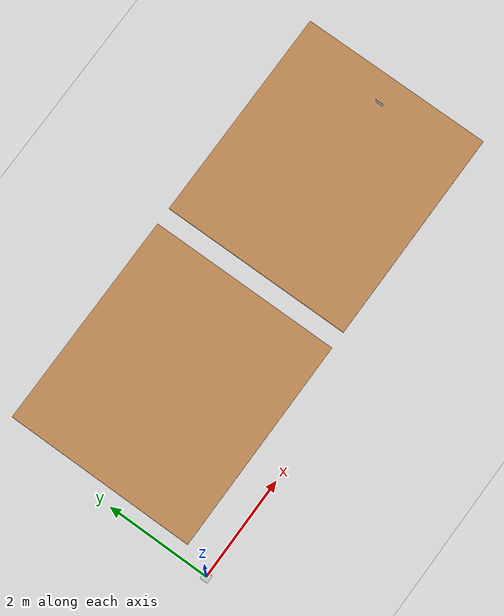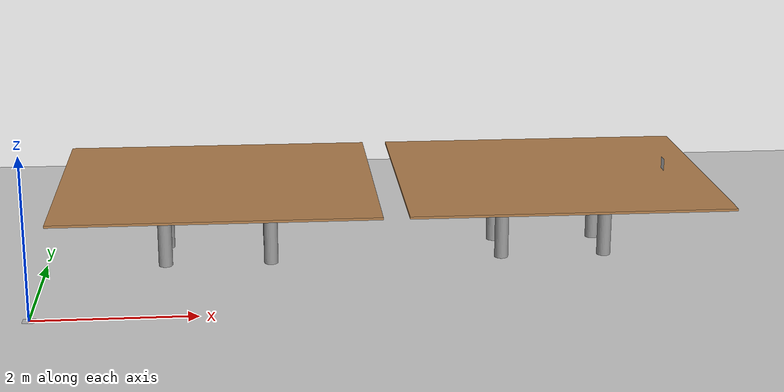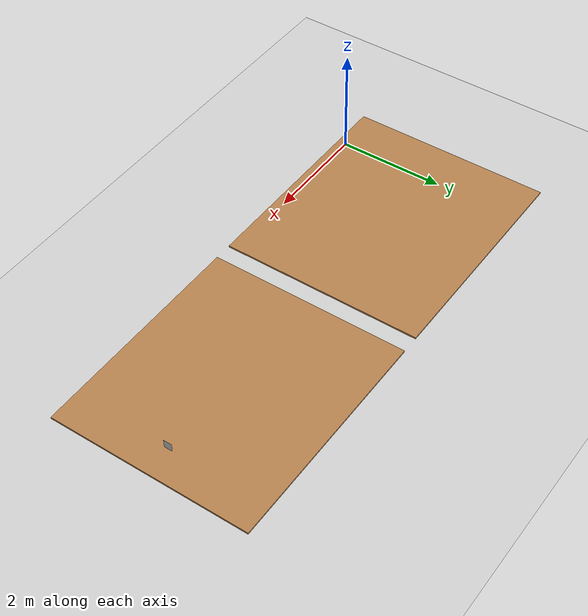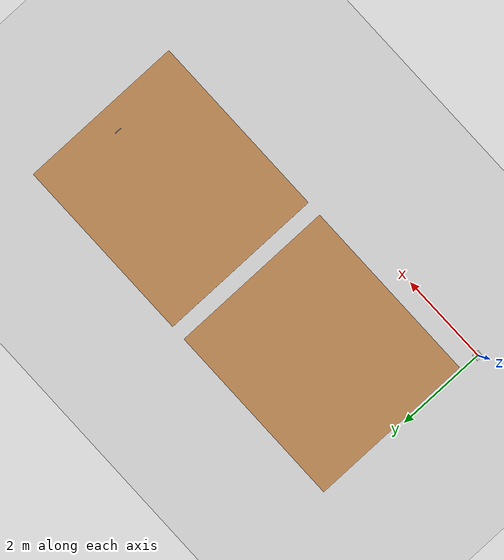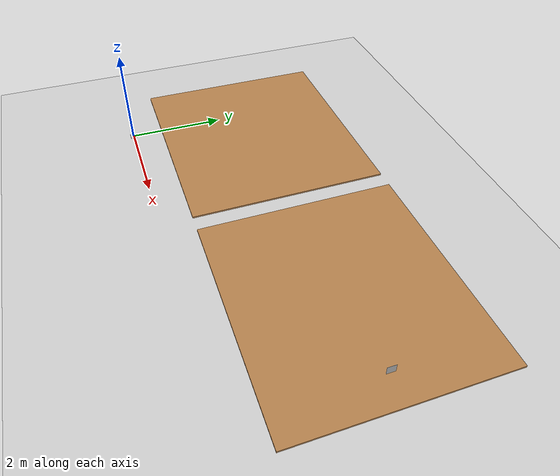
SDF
<sdf version="1.7">
 <world name="default">
  <plugin name="ros_link_attacher_plugin" filename="libgazebo_ros_link_attacher.so"/>
  <light name="sun" type="directional">
   <pose>0 0 10 0 -0 0</pose>
   <diffuse>0.8 0.8 0.8 1</diffuse>
   <specular>0.2 0.2 0.2 1</specular>
   <attenuation>
    <range>1000</range>
    <constant>0.9</constant>
    <linear>0.01</linear>
    <quadratic>0.001</quadratic>
   </attenuation>
   <direction>-0.5 0.1 -0.9</direction>
   <spot><inner_angle>0</inner_angle><outer_angle>0</outer_angle><falloff>0</falloff></spot>
  </light>
  <model name="ground_plane">
   <static>1</static>
   <link name="link">
    <collision name="collision">
     <geometry><plane><normal>0 0 1</normal><size>100 100</size></plane></geometry>
     <surface>
      <contact><collide_bitmask>65535</collide_bitmask></contact>
      <friction><ode><mu>100</mu><mu2>50</mu2></ode></friction>
     </surface>
    </collision>
    <visual name="visual">
     <cast_shadows>0</cast_shadows>
     <geometry><plane><normal>0 0 1</normal><size>100 100</size></plane></geometry>
     <material>
      <script><uri>file://media/materials/scripts/gazebo.material</uri><name>Gazebo/Grey</name></script>
     </material>
    </visual>
   </link>
  </model>
  <gravity>0 0 -9.8</gravity>
  <magnetic_field>6e-06 2.3e-05 -4.2e-05</magnetic_field>
  <atmosphere type="adiabatic"/>
  <physics type="ode">
   <max_step_size>0.001</max_step_size>
   <real_time_factor>1</real_time_factor>
   <real_time_update_rate>1000000</real_time_update_rate>
  </physics>
  <scene><ambient>0.4 0.4 0.4 1</ambient><background>0.7 0.7 0.7 1</background><shadows>1</shadows></scene>
  <spherical_coordinates>
   <surface_model>EARTH_WGS84</surface_model>
   <latitude_deg>0</latitude_deg>
   <longitude_deg>0</longitude_deg>
   <elevation>0</elevation>
   <heading_deg>0</heading_deg>
  </spherical_coordinates>
  <model name="Apriltag36_11_00028">
   <link name="main">
    <visual name="main_Visual">
     <geometry><box><size>0.15243 0.15243 0.0001</size></box></geometry>
     <material>
      <script>
       <uri>model://Apriltag36_11_00028/materials/scripts</uri>
       <uri>model://Apriltag36_11_00028/materials/textures</uri>
       <name>Apriltag36_11_00028</name>
      </script>
     </material>
    </visual>
   </link>
   <static>1</static>
  </model>
  <model name="Apriltag36_11_00029">
   <link name="main">
    <visual name="main_Visual">
     <geometry><box><size>0.15243 0.15243 0.0001</size></box></geometry>
     <material>
      <script>
       <uri>model://Apriltag36_11_00029/materials/scripts</uri>
       <uri>model://Apriltag36_11_00029/materials/textures</uri>
       <name>Apriltag36_11_00029</name>
      </script>
     </material>
    </visual>
   </link>
   <static>1</static>
  </model>
  <model name="Apriltag36_11_00030">
   <link name="main">
    <visual name="main_Visual">
     <geometry><box><size>0.15243 0.15243 0.0001</size></box></geometry>
     <material>
      <script>
       <uri>model://Apriltag36_11_00030/materials/scripts</uri>
       <uri>model://Apriltag36_11_00030/materials/textures</uri>
       <name>Apriltag36_11_00030</name>
      </script>
     </material>
    </visual>
   </link>
   <static>1</static>
  </model>
  <model name="Apriltag36_11_00031">
   <link name="main">
    <visual name="main_Visual">
     <geometry><box><size>0.15243 0.15243 0.0001</size></box></geometry>
     <material>
      <script>
       <uri>model://Apriltag36_11_00031/materials/scripts</uri>
       <uri>model://Apriltag36_11_00031/materials/textures</uri>
       <name>Apriltag36_11_00031</name>
      </script>
     </material>
    </visual>
   </link>
   <static>1</static>
   <pose>8.092145 2.286 1.108131 0 -1.56787 0</pose>
  </model>
  <model name="table">
   <static>1</static>
   <link name="link_table">
    <collision name="surface">
     <pose>0 0 1 0 -0 0</pose>
     <geometry><box><size>4.05 3.6 0.03</size></box></geometry>
     <surface><friction><ode><mu>0.6</mu><mu2>0.6</mu2></ode></friction></surface>
    </collision>
    <visual name="visual1">
     <pose>0 0 1 0 -0 0</pose>
     <geometry><box><size>4.05 3.6 0.03</size></box></geometry>
     <material>
      <script><uri>file://media/materials/scripts/gazebo.material</uri><name>Gazebo/Wood</name></script>
     </material>
    </visual>
    <collision name="front_left_leg">
     <pose>0.68 0.38 0.5 0 -0 0</pose>
     <geometry><cylinder><radius>0.09</radius><length>1</length></cylinder></geometry>
    </collision>
    <visual name="front_left_leg">
     <pose>0.68 0.38 0.5 0 -0 0</pose>
     <geometry><cylinder><radius>0.09</radius><length>1</length></cylinder></geometry>
     <material>
      <script><uri>file://media/materials/scripts/gazebo.material</uri><name>Gazebo/Grey</name></script>
     </material>
    </visual>
    <collision name="front_right_leg">
     <pose>0.68 -0.38 0.5 0 -0 0</pose>
     <geometry><cylinder><radius>0.09</radius><length>1</length></cylinder></geometry>
    </collision>
    <visual name="front_right_leg">
     <pose>0.68 -0.38 0.5 0 -0 0</pose>
     <geometry><cylinder><radius>0.09</radius><length>1</length></cylinder></geometry>
     <material>
      <script><uri>file://media/materials/scripts/gazebo.material</uri><name>Gazebo/Grey</name></script>
     </material>
    </visual>
    <collision name="back_right_leg">
     <pose>-0.68 -0.38 0.5 0 -0 0</pose>
     <geometry><cylinder><radius>0.09</radius><length>1</length></cylinder></geometry>
    </collision>
    <visual name="back_right_leg">
     <pose>-0.68 -0.38 0.5 0 -0 0</pose>
     <geometry><cylinder><radius>0.09</radius><length>1</length></cylinder></geometry>
     <material>
      <script><uri>file://media/materials/scripts/gazebo.material</uri><name>Gazebo/Grey</name></script>
     </material>
    </visual>
    <collision name="back_left_leg">
     <pose>-0.68 0.38 0.5 0 -0 0</pose>
     <geometry><cylinder><radius>0.09</radius><length>1</length></cylinder></geometry>
    </collision>
    <visual name="back_left_leg">
     <pose>-0.68 0.38 0.5 0 -0 0</pose>
     <geometry><cylinder><radius>0.09</radius><length>1</length></cylinder></geometry>
     <material>
      <script><uri>file://media/materials/scripts/gazebo.material</uri><name>Gazebo/Grey</name></script>
     </material>
    </visual>
   </link>
   <pose>2.2 2.286000 0 0 -0 0</pose>
  </model>
  <model name="table_0">
   <static>1</static>
   <link name="link_table_0">
    <collision name="surface">
     <pose>0 0 1 0 -0 0</pose>
     <geometry><box><size>4.05 3.6 0.03</size></box></geometry>
     <surface><friction><ode><mu>0.6</mu><mu2>0.6</mu2></ode></friction></surface>
    </collision>
    <visual name="visual1">
     <pose>0 0 1 0 -0 0</pose>
     <geometry><box><size>4.05 3.6 0.03</size></box></geometry>
     <material>
      <script><uri>file://media/materials/scripts/gazebo.material</uri><name>Gazebo/Wood</name></script>
     </material>
    </visual>
    <collision name="front_left_leg">
     <pose>0.68 0.38 0.5 0 -0 0</pose>
     <geometry><cylinder><radius>0.09</radius><length>1</length></cylinder></geometry>
    </collision>
    <visual name="front_left_leg">
     <pose>0.68 0.38 0.5 0 -0 0</pose>
     <geometry><cylinder><radius>0.09</radius><length>1</length></cylinder></geometry>
     <material>
      <script><uri>file://media/materials/scripts/gazebo.material</uri><name>Gazebo/Grey</name></script>
     </material>
    </visual>
    <collision name="front_right_leg">
     <pose>0.68 -0.38 0.5 0 -0 0</pose>
     <geometry><cylinder><radius>0.09</radius><length>1</length></cylinder></geometry>
    </collision>
    <visual name="front_right_leg">
     <pose>0.68 -0.38 0.5 0 -0 0</pose>
     <geometry><cylinder><radius>0.09</radius><length>1</length></cylinder></geometry>
     <material>
      <script><uri>file://media/materials/scripts/gazebo.material</uri><name>Gazebo/Grey</name></script>
     </material>
    </visual>
    <collision name="back_right_leg">
     <pose>-0.68 -0.38 0.5 0 -0 0</pose>
     <geometry><cylinder><radius>0.09</radius><length>1</length></cylinder></geometry>
    </collision>
    <visual name="back_right_leg">
     <pose>-0.68 -0.38 0.5 0 -0 0</pose>
     <geometry><cylinder><radius>0.09</radius><length>1</length></cylinder></geometry>
     <material>
      <script><uri>file://media/materials/scripts/gazebo.material</uri><name>Gazebo/Grey</name></script>
     </material>
    </visual>
    <collision name="back_left_leg">
     <pose>-0.68 0.38 0.5 0 -0 0</pose>
     <geometry><cylinder><radius>0.09</radius><length>1</length></cylinder></geometry>
    </collision>
    <visual name="back_left_leg">
     <pose>-0.68 0.38 0.5 0 -0 0</pose>
     <geometry><cylinder><radius>0.09</radius><length>1</length></cylinder></geometry>
     <material>
      <script><uri>file://media/materials/scripts/gazebo.material</uri><name>Gazebo/Grey</name></script>
     </material>
    </visual>
   </link>
   <pose>6.574885 2.286000 0 0 -0 0</pose>
  </model>
 </world>
</sdf>
